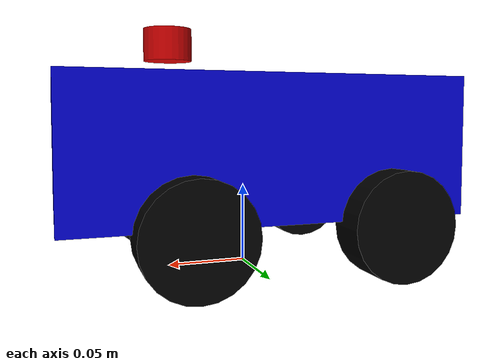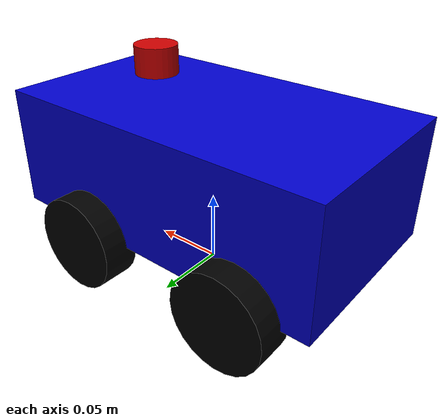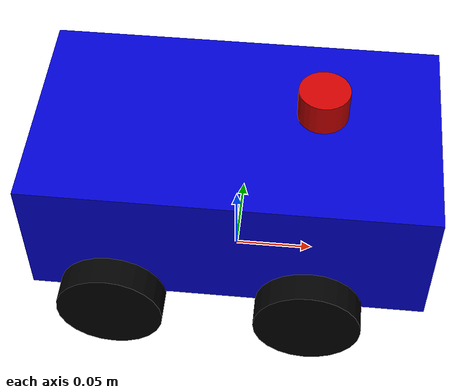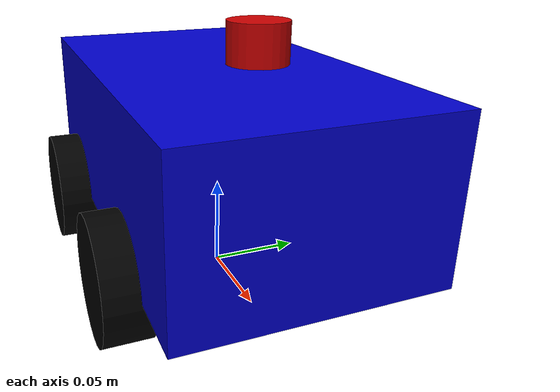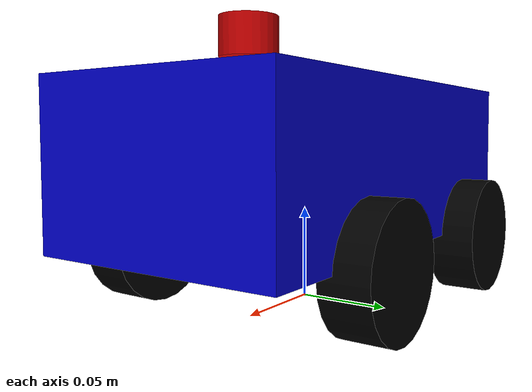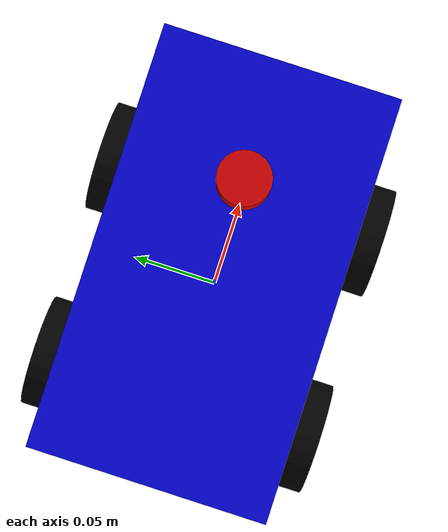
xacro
<?xml version="1.0"?>
<robot xmlns:xacro="http://www.ros.org/wiki/xacro" name="skid_steer_robot">

  <!-- Properties - Updated to your specifications -->
  <xacro:property name="base_width" value="0.135"/>      <!-- 13.5 cm -->
  <xacro:property name="base_length" value="0.24"/>      <!-- 24 cm -->
  <xacro:property name="base_height" value="0.085"/>     <!-- 8.5 cm -->
  <xacro:property name="wheel_radius" value="0.0325"/>   <!-- 6.5 cm diameter = 3.25 cm radius -->
  <xacro:property name="wheel_width" value="0.025"/>     <!-- 2.5 cm -->
  <xacro:property name="wheel_ygap" value="0.005"/>      <!-- Small gap from chassis -->

  <!-- Ground clearance: 3.5cm from ground to bottom of chassis -->
  <xacro:property name="ground_clearance" value="0.035"/> <!-- 3.5 cm -->
  <xacro:property name="wheel_zoff" value="${ground_clearance - wheel_radius + base_height/2}"/> <!-- Calculate wheel offset -->

  <!-- Wheel positioning based on your specifications -->
  <!-- Wheelbase (front to rear) = 12 cm -->
  <!-- Rear wheel to rear wheel = 5 cm (meaning rear wheels are 5cm from back edge) -->
  <xacro:property name="wheelbase" value="0.12"/>        <!-- 12 cm between front and rear wheels -->
  <xacro:property name="rear_from_back" value="0.05"/>   <!-- 5 cm from back edge to rear wheels -->

  <!-- Calculate wheel positions from center -->
  <xacro:property name="rear_wheel_xoff" value="${-base_length/2 + rear_from_back}"/>    <!-- Rear wheels position -->
  <xacro:property name="front_wheel_xoff" value="${rear_wheel_xoff + wheelbase}"/>       <!-- Front wheels position -->

  <!-- Colors -->
  <material name="blue">
    <color rgba="0 0 0.8 1"/>
  </material>
  <material name="black">
    <color rgba="0 0 0 1"/>
  </material>
  <material name="red">
    <color rgba="0.8 0 0 1"/>
  </material>

  <!-- Base Link -->
  <link name="base_link">
    <visual>
      <geometry>
        <box size="${base_length} ${base_width} ${base_height}"/>
      </geometry>
      <material name="blue"/>
    </visual>
    <collision>
      <geometry>
        <box size="${base_length} ${base_width} ${base_height}"/>
      </geometry>
    </collision>
    <inertial>
      <mass value="3.0"/>  <!-- Adjusted for smaller robot -->
      <origin xyz="0 0 0" rpy="0 0 0"/>
      <inertia ixx="0.0233" ixy="0.0" ixz="0.0"
               iyy="0.0485" iyz="0.0"
               izz="0.0605"/>
    </inertial>
  </link>

  <!-- Footprint -->
  <link name="base_footprint"/>
  <joint name="base_joint" type="fixed">
    <parent link="base_footprint"/>
    <child link="base_link"/>
    <!-- Position base so bottom is 3.5cm from ground -->
    <origin xyz="0.0 0.0 ${ground_clearance + base_height/2}" rpy="0 0 0"/>
  </joint>

  <!-- Wheel Macro -->
  <xacro:macro name="wheel" params="prefix x_reflect y_reflect x_pos">
    <link name="${prefix}_link">
      <visual>
        <origin xyz="0 0 0" rpy="0 1.5708 1.5708"/>
        <geometry>
          <cylinder radius="${wheel_radius}" length="${wheel_width}"/>
        </geometry>
        <material name="black"/>
      </visual>
      <collision>
        <origin xyz="0 0 0" rpy="0 1.5708 1.5708"/>
        <geometry>
          <cylinder radius="${wheel_radius}" length="${wheel_width}"/>
        </geometry>
      </collision>
      <inertial>
        <mass value="0.2"/>  <!-- 200g per wheel -->
        <origin xyz="0 0 0" rpy="0 0 0"/>
        <inertia ixx="0.0002" ixy="0.0" ixz="0.0"
                 iyy="0.0002" iyz="0.0"
                 izz="0.0003"/>
      </inertial>
    </link>

    <joint name="${prefix}_joint" type="continuous">
      <parent link="base_link"/>
      <child link="${prefix}_link"/>
      <!-- Position wheels to touch ground -->
      <origin xyz="${x_pos} ${y_reflect*(base_width/2+wheel_ygap)} ${-wheel_zoff}" rpy="0 0 0"/>
      <axis xyz="0 1 0"/>
      <limit effort="5.0" velocity="20.0"/>
      <dynamics damping="0.1" friction="0.05"/>
    </joint>
  </xacro:macro>

  <!-- Wheels positioned according to specifications -->
  <xacro:wheel prefix="left_front" x_reflect="1" y_reflect="1" x_pos="${front_wheel_xoff}"/>
  <xacro:wheel prefix="right_front" x_reflect="1" y_reflect="-1" x_pos="${front_wheel_xoff}"/>
  <xacro:wheel prefix="left_rear" x_reflect="-1" y_reflect="1" x_pos="${rear_wheel_xoff}"/>
  <xacro:wheel prefix="right_rear" x_reflect="-1" y_reflect="-1" x_pos="${rear_wheel_xoff}"/>

  <!-- Lidar positioned aligned with front wheels -->
  <link name="lidar_link">
    <visual>
      <geometry>
        <cylinder radius="0.015" length="0.02"/>  <!-- Smaller lidar for smaller robot -->
      </geometry>
      <material name="red"/>
    </visual>
    <collision>
      <geometry>
        <cylinder radius="0.015" length="0.02"/>
      </geometry>
    </collision>
    <inertial>
      <mass value="0.05"/>
      <origin xyz="0 0 0" rpy="0 0 0"/>
      <inertia ixx="0.0001" ixy="0.0" ixz="0.0"
               iyy="0.0001" iyz="0.0"
               izz="0.0001"/>
    </inertial>
  </link>

  <joint name="lidar_joint" type="fixed">
    <parent link="base_link"/>
    <child link="lidar_link"/>
    <!-- Position lidar aligned with front wheels, elevated on top of chassis -->
    <origin xyz="${front_wheel_xoff} 0 ${base_height/2 + 0.02}" rpy="0 0 0"/>
  </joint>

  <!-- IMU positioned at center of chassis -->
  <link name="imu_link">
    <visual>
      <geometry>
        <box size="0.01 0.01 0.005"/>  <!-- Smaller IMU -->
      </geometry>
      <material name="red"/>
    </visual>
    <collision>
      <geometry>
        <box size="0.01 0.01 0.005"/>
      </geometry>
    </collision>
    <inertial>
      <mass value="0.01"/>
      <origin xyz="0 0 0" rpy="0 0 0"/>
      <inertia ixx="0.0001" ixy="0.0" ixz="0.0"
               iyy="0.0001" iyz="0.0"
               izz="0.0001"/>
    </inertial>
  </link>

  <joint name="imu_joint" type="fixed">
    <parent link="base_link"/>
    <child link="imu_link"/>
    <origin xyz="0 0 0.02" rpy="0 0 0"/>  <!-- Center of chassis -->
  </joint>

  <!-- Gazebo Plugins - TIDAK DIUBAH sesuai permintaan -->

  <!-- Skid Steer Drive Plugin with Odometry -->
  <gazebo>
    <plugin name="skid_steer_drive_controller" filename="libgazebo_ros_diff_drive.so">

      <!-- Plugin Parameters -->
      <update_rate>50.0</update_rate>

      <!-- Number of wheel pairs -->
      <num_wheel_pairs>2</num_wheel_pairs>

      <!-- Wheels -->
      <left_joint>left_front_joint</left_joint>
      <left_joint>left_rear_joint</left_joint>
      <right_joint>right_front_joint</right_joint>
      <right_joint>right_rear_joint</right_joint>

      <!-- Kinematics - Updated to match new dimensions -->
      <wheel_separation>${base_width + 2*wheel_ygap}</wheel_separation>  <!-- Actual track width -->
      <wheel_diameter>${wheel_radius * 2}</wheel_diameter>               <!-- Actual wheel diameter -->

      <!-- Limits -->
      <max_wheel_torque>100</max_wheel_torque>
      <max_wheel_acceleration>2.0</max_wheel_acceleration>

      <!-- Output -->
      <publish_odom>true</publish_odom>
      <publish_odom_tf>true</publish_odom_tf>
      <publish_wheel_tf>true</publish_wheel_tf>

      <odometry_frame>odom</odometry_frame>
      <robot_base_frame>base_footprint</robot_base_frame>

      <!-- Remapping -->
      <ros>
        <namespace>/</namespace>
        <remapping>cmd_vel:=cmd_vel</remapping>
        <remapping>odom:=odom</remapping>
      </ros>

    </plugin>
  </gazebo>

  <!-- Lidar Plugin - TIDAK DIUBAH -->
  <gazebo reference="lidar_link">
    <sensor name="lidar" type="ray">
      <pose>0 0 0 0 0 0</pose>
      <visualize>true</visualize>
      <update_rate>10</update_rate>
      <ray>
        <scan>
          <horizontal>
            <samples>360</samples>
            <resolution>1</resolution>
            <min_angle>-3.14159</min_angle>
            <max_angle>3.14159</max_angle>
          </horizontal>
        </scan>
        <range>
          <min>0.3</min>
          <max>15</max>
          <resolution>0.1</resolution>
        </range>
      </ray>
      <plugin name="lidar_controller" filename="libgazebo_ros_ray_sensor.so">
        <ros>
          <remapping>~/out:=scan</remapping>
        </ros>
        <output_type>sensor_msgs/LaserScan</output_type>
        <frame_name>lidar_link</frame_name>
      </plugin>
    </sensor>
  </gazebo>

  <!-- IMU Plugin - TIDAK DIUBAH -->
  <gazebo reference="imu_link">
    <sensor name="imu_sensor" type="imu">
      <plugin filename="libgazebo_ros_imu_sensor.so" name="imu_plugin">
        <ros>
          <namespace>/</namespace>
          <remapping>~/out:=imu</remapping>
        </ros>
        <initial_orientation_as_reference>false</initial_orientation_as_reference>
      </plugin>
      <always_on>true</always_on>
      <update_rate>100</update_rate>
      <visualize>true</visualize>
      <imu>
        <angular_velocity>
          <x>
            <noise type="gaussian">
              <mean>0.0</mean>
              <stddev>2e-4</stddev>
            </noise>
          </x>
          <y>
            <noise type="gaussian">
              <mean>0.0</mean>
              <stddev>2e-4</stddev>
            </noise>
          </y>
          <z>
            <noise type="gaussian">
              <mean>0.0</mean>
              <stddev>2e-4</stddev>
            </noise>
          </z>
        </angular_velocity>
        <linear_acceleration>
          <x>
            <noise type="gaussian">
              <mean>0.0</mean>
              <stddev>1.7e-2</stddev>
            </noise>
          </x>
          <y>
            <noise type="gaussian">
              <mean>0.0</mean>
              <stddev>1.7e-2</stddev>
            </noise>
          </y>
          <z>
            <noise type="gaussian">
              <mean>0.0</mean>
              <stddev>1.7e-2</stddev>
            </noise>
          </z>
        </linear_acceleration>
      </imu>
    </sensor>
  </gazebo>

  <!-- Gazebo Colors -->
  <gazebo reference="base_link">
    <material>Gazebo/Blue</material>
  </gazebo>

  <gazebo reference="left_front_link">
    <material>Gazebo/Black</material>
  </gazebo>

  <gazebo reference="right_front_link">
    <material>Gazebo/Black</material>
  </gazebo>

  <gazebo reference="left_rear_link">
    <material>Gazebo/Black</material>
  </gazebo>

  <gazebo reference="right_rear_link">
    <material>Gazebo/Black</material>
  </gazebo>

  <gazebo reference="lidar_link">
    <material>Gazebo/Red</material>
  </gazebo>

</robot>
